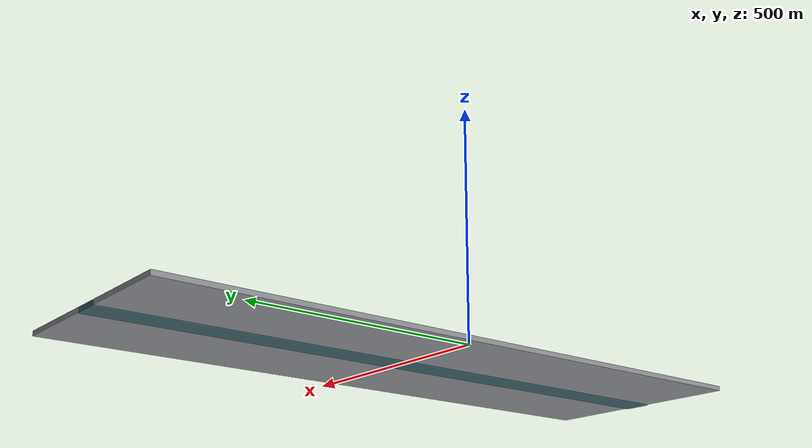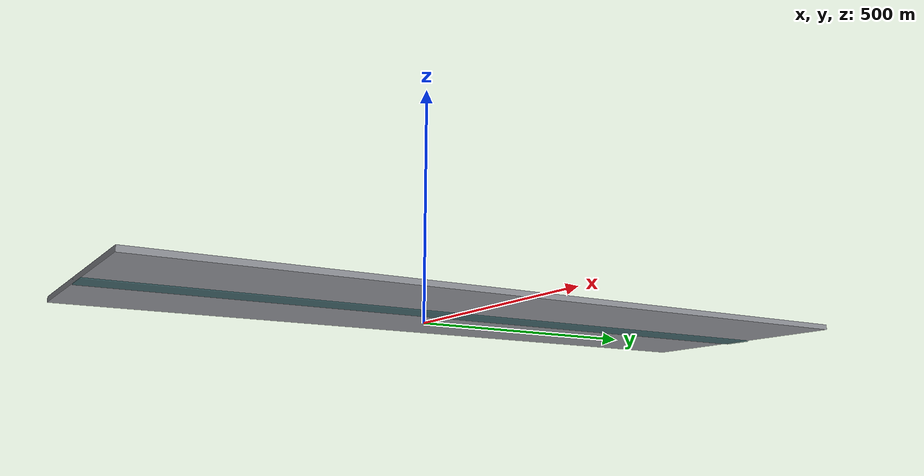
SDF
<?xml version="1.0" ?>
<sdf version="1.9">
  <model name="avian_final_terrain">
    <static>true</static>
    <pose>0 0 0 0 0 0</pose>
    <link name="link">
      <collision name="ENV_GROUND_PLANE_collision">
        <pose>180.000000 0.000000 -5.000000 0 0 0.000000</pose>
        <geometry>
          <box>
            <size>480.000000 1400.000000 10.000000</size>
          </box>
        </geometry>
      </collision>
      <visual name="ENV_GROUND_PLANE_visual">
        <pose>180.000000 0.000000 -5.000000 0 0 0.000000</pose>
        <geometry>
          <box>
            <size>480.000000 1400.000000 10.000000</size>
          </box>
        </geometry>
        <material>
          <ambient>0.220 0.224 0.232 1</ambient>
          <diffuse>0.550 0.560 0.580 1</diffuse>
          <specular>0.1 0.1 0.1 1</specular>
        </material>
      </visual>
      <collision name="ENV_WATER_SURFACE_collision">
        <pose>180.000000 0.000000 -7.000000 0 0 0.000000</pose>
        <geometry>
          <box>
            <size>60.000000 1400.000000 10.000000</size>
          </box>
        </geometry>
      </collision>
      <visual name="ENV_WATER_SURFACE_visual">
        <pose>180.000000 0.000000 -7.000000 0 0 0.000000</pose>
        <geometry>
          <box>
            <size>60.000000 1400.000000 10.000000</size>
          </box>
        </geometry>
        <material>
          <ambient>0.056 0.136 0.144 1</ambient>
          <diffuse>0.140 0.340 0.360 1</diffuse>
          <specular>0.1 0.1 0.1 1</specular>
        </material>
        <transparency>0.35</transparency>
      </visual>
    </link>
  </model>
</sdf>
